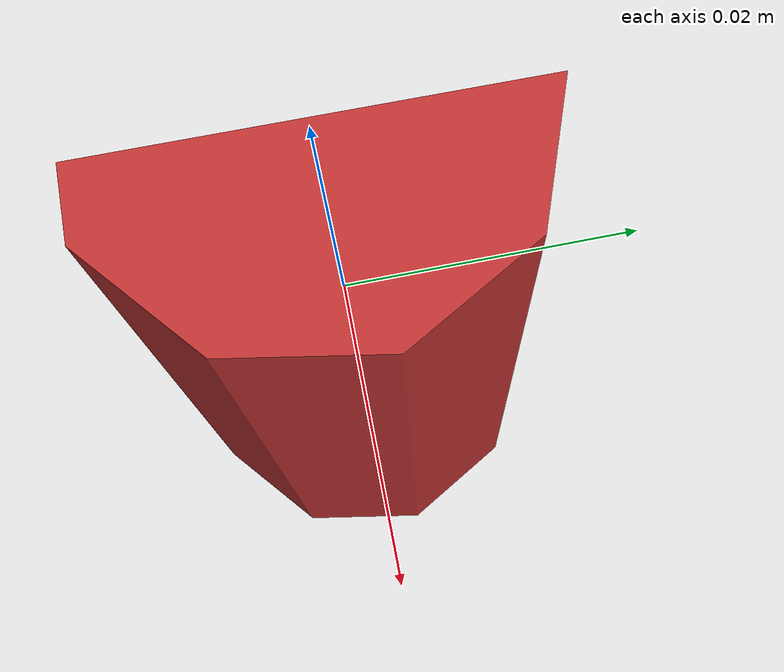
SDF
<?xml version="1.0" ?>
<sdf version='1.6'>
  <model name='cyl_9'>
    <link name='cyl_9'>
      <pose frame=''>0 0 0 0 0 0</pose>
      <inertial>
        <pose frame=''>0.005131 -0.000000 0.000000 0. 0. 0.</pose>
        <mass>9.57245615741e-06</mass>
        <inertia>
          <ixx>1.73889629169e-09</ixx>
          <ixy>-5.9545947781e-13</ixy>
          <ixz>-4.52755806658e-26</ixz>
          <iyy>1.48686797463e-09</iyy>
          <iyz>1.02099371873e-30</iyz>
          <izz>4.47929179214e-10</izz>
        </inertia>
      </inertial>
      <visual>
        <pose frame=''>0 0 0 0 0 0</pose>
        <geometry>
          <mesh>
            <scale>1 1 1</scale>
            <uri>models/half_carrot_models/meshes/cyl_9.obj</uri>
          </mesh>
        </geometry>
        <material>
          <ambient>0.75 0.2 0.2 1.0</ambient>
          <diffuse>0.75 0.2 0.2 1.0</diffuse>
          <specular>0.01 0.01 0.01 1</specular>
          <emissive>0 0 0 1</emissive>
          <shader type='vertex'>
            <normal_map>__default__</normal_map>
          </shader>
        </material>
      </visual>
      <collision>
        <pose frame=''>0 0 0 0 0 0</pose>
        <geometry>
          <mesh>
            <scale>1 1 1</scale>
            <uri>models/half_carrot_models/meshes/cyl_9.obj</uri>
          </mesh>
        </geometry>
      </collision>
      <gravity>1</gravity>
      <self_collide>0</self_collide>
    </link>
  </model>
</sdf>
